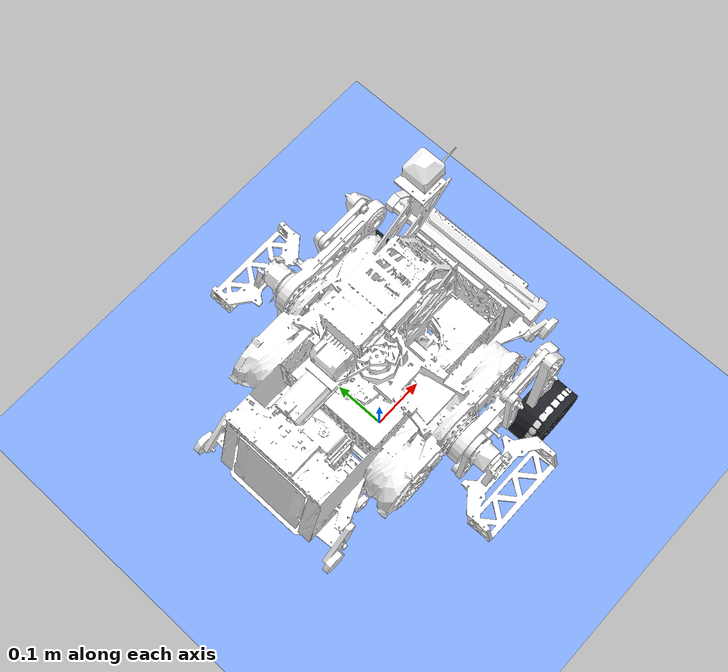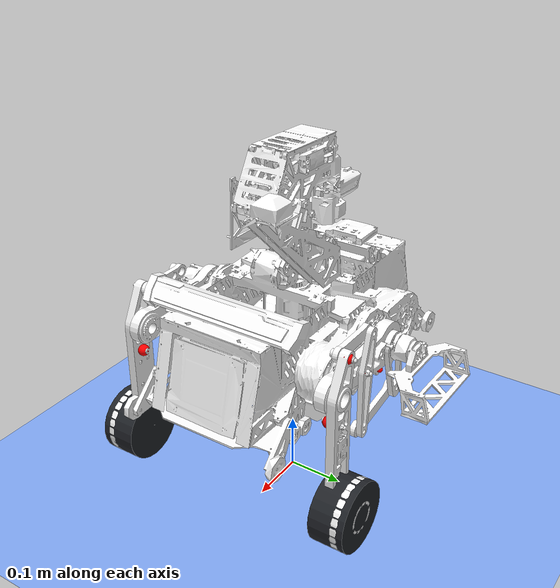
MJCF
<?xml version='1.0' encoding='utf-8'?>
<mujoco model="infantry_balance_v1">
  <compiler angle="radian" meshdir="../../../infantry_V4/meshes" autolimits="true" />
  <default>
    <geom contype="1" conaffinity="2" />
  </default>
  <asset>
    <mesh name="base_Link_del" file="base_link_del.STL" />
    <mesh name="rf0_Link" file="rf0_Link.STL" />
    <mesh name="rf1_Link" file="rf1_Link.STL" />
    <mesh name="r_wheel_Link" file="r_wheel_Link.STL" />
    <mesh name="lf0_Link" file="lf0_Link.STL" />
    <mesh name="lf1_Link" file="lf1_Link.STL" />
    <mesh name="l_wheel_Link" file="l_wheel_Link.STL" />
    <mesh name="r20_Link" file="r20_Link.STL" />
    <mesh name="r21_Link" file="r21_Link.STL" />
    <mesh name="r22_Link" file="r22_Link.STL" />
    <mesh name="r23_Link" file="r23_Link.STL" />
    <mesh name="l20_Link" file="l20_Link.STL" />
    <mesh name="l21_Link" file="l21_Link.STL" />
    <mesh name="l22_Link" file="l22_Link.STL" />
    <mesh name="l23_Link" file="l23_Link.STL" />
    <material name="floor_gray" rgba="0.65 0.65 0.65 1" specular="0.15" shininess="0.6" />
    <texture name="blue_checker_tex" type="2d" builtin="checker" width="512" height="512" rgb1="0.2 0.4 0.9" rgb2="0.8 0.9 1.0" />
    <material name="blue_checker_mat" texture="blue_checker_tex" texrepeat="20 20" reflectance="0.1" />
  </asset>
  <worldbody>
    <geom name="floor" type="plane" size="40 40 0.1" material="blue_checker_mat" contype="2" conaffinity="1" condim="3" friction="1.0 0.005 0.0001" />
    <body name="base_Link_del" pos="0 0 0.24" quat="1 0 0 0">
      <freejoint />
      <inertial pos="-0.00406060 0.0008523 0.09714204" mass="14.528116" fullinertia="0.28353 0.35249 0.3701 -0.00174358 -0.00825907 -0.00214156" />
      <site name="imu_site" pos="0 0 0" size="0.005" />
      <camera name="follow_cam" pos="0 0 0.45" xyaxes="0 1 0 0 0 1" fovy="55" />
      <geom name="base_Link_del_geom" type="mesh" rgba="1 1 1 1" mesh="base_Link_del" priority="2" condim="1" friction="0 0 0" />
      <body name="rf0_Link" pos="0 -0.1877 0.08725" quat="0.707105 0.707108 0 0">
        <inertial pos="0.0552763 -0.0165544 -0.00927161" quat="-0.005176 0.693173 0.0544357 0.718694" mass="1.1132" diaginertia="0.00641833 0.00468513 0.00204569" />
        <joint name="rf0_Joint" pos="0 0 0" axis="0 0 1" armature="0.01" range="-100 100" actuatorfrcrange="-30 30" damping="0.2" />
        <geom type="mesh" rgba="1 1 1 1" mesh="rf0_Link" />
        <site name="Right_front_site1" pos="0.09435 0 0.01" size="0.005" rgba="1 0 0 1" />
        <site name="right_lf0_qitanhuang" pos="0.0155 -0.0445 -0.008" size="0.005" rgba="1 0 0 1" />
        <body name="rf1_Link" pos="0.17472 0 0">
          <inertial pos="-0.00283459 -0.0710676 0.0068255" quat="0.483182 0.50274 -0.490133 0.523027" mass="0.306873" diaginertia="0.0025405 0.00248016 8.5602e-05" />
          <joint name="rf1_Joint" pos="0 0 0" axis="0 0 1" armature="0.01" range="-1.1 0.63" actuatorfrcrange="-30 30" damping="0.2" />
          <geom type="mesh" rgba="1 1 1 1" mesh="rf1_Link" />
          <site name="Right_front_site2" pos="-0.0160931 0.0609099 0.01" size="0.005" rgba="1 0 0 1" />
          <site name="right_lf1_qitanhuang" pos="0.005 -0.046 -0.005" size="0.01" rgba="1 0 0 1" />
          <body name="r_wheel_Link" pos="0 -0.208 0.016">
            <inertial pos="4.1184e-06 -0.00019289 0.019562" mass="0.4904" fullinertia="0.00033958 0.00034133 0.0005817 0 0 0" />
            <joint name="r_wheel_Joint" pos="0 0 0" axis="0 0 1" actuatorfrcrange="-30 30" armature="0.005" damping="0.02" />
            <geom type="mesh" rgba="1 1 1 1" mesh="r_wheel_Link" contype="0" conaffinity="0" />
            <geom name="r_wheel_Link_collision" type="cylinder" size="0.06 0.03075" pos="0 0 0.00765" rgba="0.13 0.14 0.16 1" friction="1.0 0.005 0.0001" condim="3" />
          </body>
        </body>
      </body>
      <body name="lf0_Link" pos="0 0.1877 0.08725" quat="0.707105 -0.707108 0 0">
        <inertial pos="0.055403 0.016584 -0.0092702" quat="0.00463484 0.693099 -0.0538381 0.718814" mass="1.1128" diaginertia="0.00641157 0.0046755 0.00204815" />
        <joint name="lf0_Joint" pos="0 0 0" axis="0 0 1" armature="0.01" range="-100 100" actuatorfrcrange="-30 30" damping="0.2" />
        <geom type="mesh" rgba="1 1 1 1" mesh="lf0_Link" />
        <site name="Left_front_site1" pos="0.09435 0 0.01" size="0.005" rgba="1 0 0 1" />
        <site name="left_lf0_qitanhuang" pos="0.0155 0.0445 -0.008" size="0.005" rgba="1 0 0 1" />
        <body name="lf1_Link" pos="0.17472 0 0">
          <inertial pos="-0.0028358 0.071068 0.0068255" quat="0.50274 0.483182 -0.523027 0.490133" mass="0.30687" diaginertia="0.0025405 0.00248016 8.5602e-05" />
          <joint name="lf1_Joint" pos="0 0 0" axis="0 0 1" armature="0.01" range="-0.63 1.1" actuatorfrcrange="-30 30" damping="0.2" />
          <geom type="mesh" rgba="1 1 1 1" mesh="lf1_Link" />
          <site name="Left_front_site2" pos="-0.0160931 -0.0609099 0.01" size="0.01" rgba="1 0 0 1" />
          <site name="left_lf1_qitanhuang" pos="0.005 0.046 -0.005" size="0.01" rgba="1 0 0 1" />
          <body name="l_wheel_Link" pos="0 0.208 0.016">
            <inertial pos="-4.1184e-06 0.00019289 0.019562" mass="0.4904" fullinertia="0.00033958 0.00034133 0.0005817 0 0 0" />
            <joint name="l_wheel_Joint" pos="0 0 0" axis="0 0 1" actuatorfrcrange="-30 30" armature="0.005" damping="0.02" />
            <geom type="mesh" rgba="1 1 1 1" mesh="l_wheel_Link" contype="0" conaffinity="0" />
            <geom name="l_wheel_Link_collision" type="cylinder" size="0.06 0.03075" pos="0 0 0.00765" rgba="0.13 0.14 0.16 1" friction="1.0 0.005 0.0001" condim="3" />
          </body>
        </body>
      </body>
      <body name="r20_Link" pos="0 -0.1877 0.08725" quat="0.707105 0.707108 0 0">
        <inertial pos="-0.0077129 -0.044014 0.0053168" quat="0.54287 0.453598 -0.539995 0.456012" mass="0.058433" diaginertia="0.000101653 9.09634e-05 1.15321e-05" />
        <joint name="r20_Joint" pos="0 0 0" axis="0 0 1" armature="0.01" actuatorfrcrange="-30 30" damping="0.2" />
        <geom type="mesh" rgba="1 1 1 1" mesh="r20_Link" />
        <body name="r21_Link" pos="-0.016285 -0.092933 0.01">
          <inertial pos="0.05374 -0.013258 -0.01451" quat="0.0690441 0.704772 -0.0560118 0.70384" mass="0.042999" diaginertia="7.83158e-05 7.61359e-05 2.77956e-06" />
          <joint name="r21_Link" pos="0 0 0" axis="0 0 1" actuatorfrcrange="-30 30" armature="0.01" damping="0.2" />
          <geom type="mesh" rgba="1 1 1 1" mesh="r21_Link" />
          <body name="r22_Link" pos="0.11063 -0.019387 0">
            <inertial pos="-0.006381 0.08888 -0.0045" quat="0.475753 0.523125 -0.475753 0.523125" mass="0.065877" diaginertia="0.00021104 0.000205523 6.41108e-06" />
            <joint name="r22_Joint" pos="0 0 0" axis="0 0 1" actuatorfrcrange="-30 30" armature="0.01" damping="0.2" />
            <geom type="mesh" rgba="1 1 1 1" mesh="r22_Link" />
            <site name="Right_rear_site1" pos="0 0.11232 0" size="0.005" rgba="1 1 0 1" />
            <body name="r23_Link" pos="-0.018032 0.17268 0">
              <inertial pos="0.040186 0 -0.014509" quat="0 0.707107 0 0.707107" mass="0.010945" diaginertia="1.0337e-05 9.8695e-06 6.2034e-07" />
              <joint name="r23_Joint" pos="0 0 0" axis="0 0 1" actuatorfrcrange="-30 30" armature="0.01" damping="0.2" />
              <geom type="mesh" rgba="1 1 1 1" mesh="r23_Link" />
              <site name="Right_rear_site2" pos="0.08037 0 0" size="0.005" rgba="1 1 0 1" />
            </body>
          </body>
        </body>
      </body>
      <body name="l20_Link" pos="0 0.1877 0.08725" quat="0.707105 -0.707108 0 0">
        <inertial pos="-0.0077129 -0.044014 0.0053168" quat="-0.066476 0.705194 0.0534809 0.703863" mass="0.058433" diaginertia="7.83158e-05 7.61355e-05 2.77958e-06" />
        <joint name="l20_Joint" pos="0 0 0" axis="0 0 1" armature="0.01" actuatorfrcrange="-30 30" damping="0.2" />
        <geom type="mesh" rgba="1 1 1 1" mesh="l20_Link" />
        <body name="l21_Link" pos="-0.016285 0.092933 0.01">
          <inertial pos="0.055588 0.013582 -0.01451" quat="-0.066476 0.705194 0.0534809 0.703863" mass="0.042999" diaginertia="7.83158e-05 7.61355e-05 2.77958e-06" />
          <joint name="l21_Joint" pos="0 0 0" axis="0 0 1" actuatorfrcrange="-30 30" armature="0.01" damping="0.2" />
          <geom type="mesh" rgba="1 1 1 1" mesh="l21_Link" />
          <body name="l22_Link" pos="0.11063 0.019387 0">
            <inertial pos="-0.006381 -0.08888 -0.0045" quat="0.523125 0.475753 -0.523125 0.475753" mass="0.065877" diaginertia="0.00021104 0.000205523 6.41108e-06" />
            <joint name="l22_Joint" pos="0 0 0" axis="0 0 1" actuatorfrcrange="-30 30" armature="0.01" damping="0.2" />
            <geom type="mesh" rgba="1 1 1 1" mesh="l22_Link" />
            <site name="Left_rear_site1" pos="0 -0.11232 0" size="0.005" rgba="1 1 0 1" />
            <body name="l23_Link" pos="-0.018032 -0.17268 0">
              <inertial pos="0.040186 0 -0.014509" quat="0 0.707107 0 0.707107" mass="0.010945" diaginertia="1.0337e-05 9.8695e-06 6.2034e-07" />
              <joint name="l23_Joint" pos="0 0 0" axis="0 0 1" actuatorfrcrange="-30 30" armature="0.01" damping="0.2" />
              <geom type="mesh" rgba="1 1 1 1" mesh="l23_Link" />
              <site name="Left_rear_site2" pos="0.08037 0 0" size="0.005" rgba="1 1 0 1" />
            </body>
          </body>
        </body>
      </body>
    </body>
    <light pos="0 0 3" dir="0 0 -1" directional="true" />
  </worldbody>
  <equality>
    <connect name="Left_loop1" site1="Left_front_site1" site2="Left_rear_site1" solref="0.006 1" solimp="0.99 0.99 0.01 0.5 2" />
    <connect name="Left_loop2" site1="Left_front_site2" site2="Left_rear_site2" solref="0.006 1" solimp="0.99 0.99 0.01 0.5 2" />
    <connect name="Right_loop1" site1="Right_front_site1" site2="Right_rear_site1" solref="0.006 1" solimp="0.99 0.99 0.01 0.5 2" />
    <connect name="Right_loop2" site1="Right_front_site2" site2="Right_rear_site2" solref="0.006 1" solimp="0.99 0.99 0.01 0.5 2" />
  </equality>
  <option timestep="0.002" integrator="implicitfast" solver="Newton" iterations="60" tolerance="1e-8" />
  <actuator>
    <position name="act_lf0_Joint" joint="lf0_Joint" kp="240" kv="8" forcerange="-30 30" />
    <position name="act_l20_Joint" joint="l20_Joint" kp="240" kv="8" forcerange="-30 30" />
    <position name="act_rf0_Joint" joint="rf0_Joint" kp="240" kv="8" forcerange="-30 30" />
    <position name="act_r20_Joint" joint="r20_Joint" kp="240" kv="8" forcerange="-30 30" />
    <motor name="act_l_wheel_Joint" joint="l_wheel_Joint" gear="1" ctrlrange="-12 12" forcerange="-12 12" />
    <motor name="act_r_wheel_Joint" joint="r_wheel_Joint" gear="1" ctrlrange="-12 12" forcerange="-12 12" />
  </actuator>
  <statistic center="0 0 0.25" extent="1.2" />
  <keyframe>
    <key name="stand" qpos="0.0000000000 0.0000000000 0.2400000000 1.0000000000 0.0000000000 0.0000000000 0.0000000000 -0.6544832533 -0.0469925776 0.0000000000 0.6544832533 0.0469925776 0.0000000000 -0.7475915797 0.0789298843 -0.0647924114 0.0790234903 0.7475915797 -0.0789298843 0.0647924114 -0.0790234903" ctrl="0.6544832533 0.7475915797 -0.6544832533 -0.7475915797 0.0000000000 0.0000000000" />
  </keyframe>
</mujoco>
